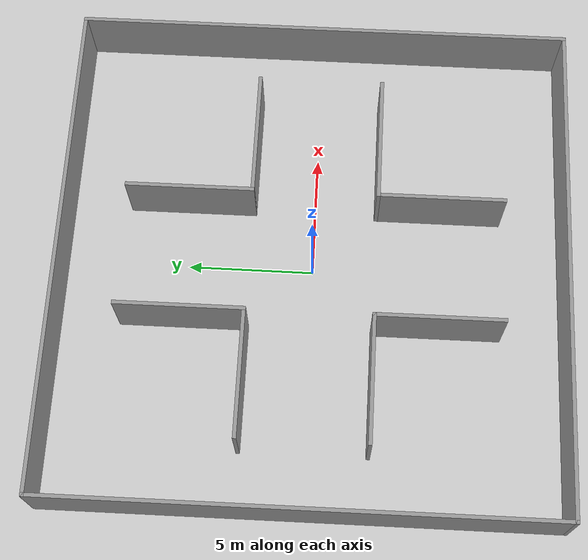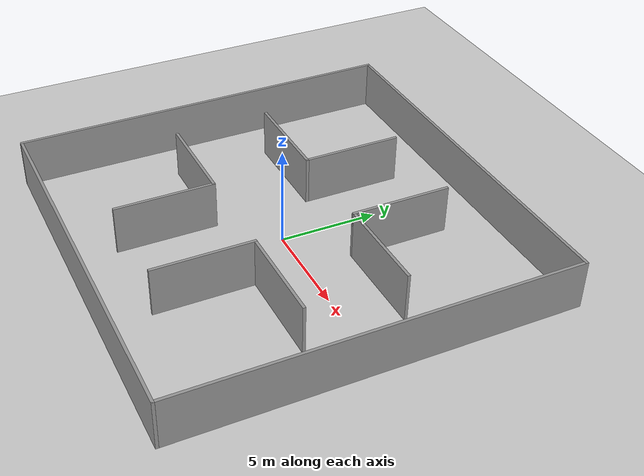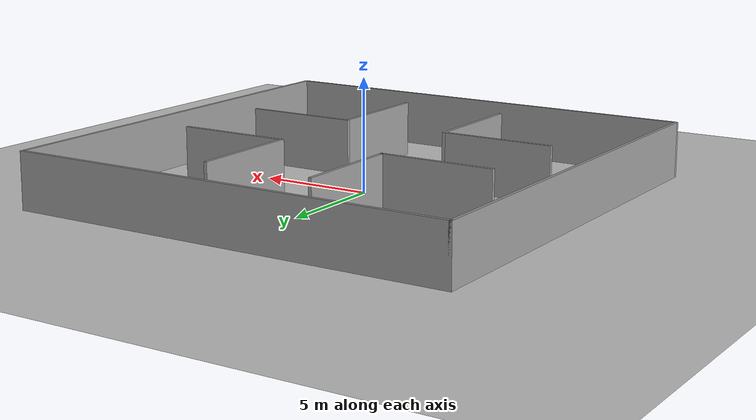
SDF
<?xml version='1.0'?>
<sdf version='1.7'>
  <world name='default'>
    <!-- Plugin -->
    <plugin name="gazebo_ros_state" filename="libgazebo_ros_state.so">
      <ros>
        <namespace>/plug</namespace>
        <argument>model_states:=model_states_plug</argument>
        <argument>link_states:=link_states_plug</argument>
      </ros>
      <update_rate>1.0</update_rate>
    </plugin>

    <!-- Sun -->
    <include>
      <uri>model://sun</uri>
    </include>

    <!-- Ground Plane -->
    <include>
      <uri>model://ground_plane</uri>
    </include>

    <!-- Walls -->
    <model name='cross'>
      <pose>0 0 0 0 0 0</pose>
      <static>true</static>

      <!-- Wall 0 -->
      <link name='Wall_0'>
        <collision name='Wall_0_Collision'>
          <geometry>
            <box>
              <size>20.15 0.15 2.5</size>
            </box>
          </geometry>
          <pose>0 0 1.25 0 0 0</pose>
        </collision>
        <visual name='Wall_0_Visual'>
          <geometry>
            <box>
              <size>20.15 0.15 2.5</size>
            </box>
          </geometry>
          <pose>0 0 1.25 0 0 0</pose>
          <material>
            <script>
              <uri>file://media/materials/scripts/gazebo.material</uri>
              <name>Gazebo/Grey</name>
            </script>
            <ambient>1 1 1 1</ambient>
          </material>
        </visual>
        <pose>0 10 0 0 0 0</pose>
      </link>

      <!-- Wall 1 -->
      <link name='Wall_1'>
        <collision name='Wall_1_Collision'>
          <geometry>
            <box>
              <size>20.15 0.15 2.5</size>
            </box>
          </geometry>
          <pose>0 0 1.25 0 0 0</pose>
        </collision>
        <visual name='Wall_1_Visual'>
          <geometry>
            <box>
              <size>20.15 0.15 2.5</size>
            </box>
          </geometry>
          <pose>0 0 1.25 0 0 0</pose>
          <material>
            <script>
              <uri>file://media/materials/scripts/gazebo.material</uri>
              <name>Gazebo/Grey</name>
            </script>
            <ambient>1 1 1 1</ambient>
          </material>
        </visual>
        <pose>10 0 0 0 0 -1.5708</pose>
      </link>

      <!-- Wall 11 -->
      <link name='Wall_11'>
        <collision name='Wall_11_Collision'>
          <geometry>
            <box>
              <size>5.15 0.15 2.5</size>
            </box>
          </geometry>
          <pose>0 0 1.25 0 0 0</pose>
        </collision>
        <visual name='Wall_11_Visual'>
          <geometry>
            <box>
              <size>5.15 0.15 2.5</size>
            </box>
          </geometry>
          <pose>0 0 1.25 0 0 0</pose>
          <material>
            <script>
              <uri>file://media/materials/scripts/gazebo.material</uri>
              <name>Gazebo/Grey</name>
            </script>
            <ambient>1 1 1 1</ambient>
          </material>
        </visual>
        <pose>-5 -2.5 0 0 0 0</pose>
      </link>

      <!-- Wall 12 -->
      <link name='Wall_12'>
        <collision name='Wall_12_Collision'>
          <geometry>
            <box>
              <size>5.15 0.15 2.5</size>
            </box>
          </geometry>
          <pose>0 0 1.25 0 0 0</pose>
        </collision>
        <visual name='Wall_12_Visual'>
          <geometry>
            <box>
              <size>5.15 0.15 2.5</size>
            </box>
          </geometry>
          <pose>0 0 1.25 0 0 0</pose>
          <material>
            <script>
              <uri>file://media/materials/scripts/gazebo.material</uri>
              <name>Gazebo/Grey</name>
            </script>
            <ambient>1 1 1 1</ambient>
          </material>
        </visual>
        <pose>-2.5 -5 0 0 0 -1.5708</pose>
      </link>

      <!-- Wall 14 -->
      <link name='Wall_14'>
        <collision name='Wall_14_Collision'>
          <geometry>
            <box>
              <size>5.15 0.15 2.5</size>
            </box>
          </geometry>
          <pose>0 0 1.25 0 0 0</pose>
        </collision>
        <visual name='Wall_14_Visual'>
          <geometry>
            <box>
              <size>5.15 0.15 2.5</size>
            </box>
          </geometry>
          <pose>0 0 1.25 0 0 0</pose>
          <material>
            <script>
              <uri>file://media/materials/scripts/gazebo.material</uri>
              <name>Gazebo/Grey</name>
            </script>
            <ambient>1 1 1 1</ambient>
          </material>
        </visual>
        <pose>5 -2.5 0 0 0 3.14159</pose>
      </link>

      <!-- Wall 15 -->
      <link name='Wall_15'>
        <collision name='Wall_15_Collision'>
          <geometry>
            <box>
              <size>5.15 0.15 2.5</size>
            </box>
          </geometry>
          <pose>0 0 1.25 0 0 0</pose>
        </collision>
        <visual name='Wall_15_Visual'>
          <geometry>
            <box>
              <size>5.15 0.15 2.5</size>
            </box>
          </geometry>
          <pose>0 0 1.25 0 0 0</pose>
          <material>
            <script>
              <uri>file://media/materials/scripts/gazebo.material</uri>
              <name>Gazebo/Grey</name>
            </script>
            <ambient>1 1 1 1</ambient>
          </material>
        </visual>
        <pose>2.5 -5 0 0 0 -1.5708</pose>
      </link>

      <!-- Wall 17 -->
      <link name='Wall_17'>
        <collision name='Wall_17_Collision'>
          <geometry>
            <box>
              <size>5.15 0.15 2.5</size>
            </box>
          </geometry>
          <pose>0 0 1.25 0 0 0</pose>
        </collision>
        <visual name='Wall_17_Visual'>
          <geometry>
            <box>
              <size>5.15 0.15 2.5</size>
            </box>
          </geometry>
          <pose>0 0 1.25 0 0 0</pose>
          <material>
            <script>
              <uri>file://media/materials/scripts/gazebo.material</uri>
              <name>Gazebo/Grey</name>
            </script>
            <ambient>1 1 1 1</ambient>
          </material>
        </visual>
        <pose>2.5 5 0 0 0 -1.5708</pose>
      </link>

      <!-- Wall 18 -->
      <link name='Wall_18'>
        <collision name='Wall_18_Collision'>
          <geometry>
            <box>
              <size>5.15 0.15 2.5</size>
            </box>
          </geometry>
          <pose>0 0 1.25 0 0 0</pose>
        </collision>
        <visual name='Wall_18_Visual'>
          <geometry>
            <box>
              <size>5.15 0.15 2.5</size>
            </box>
          </geometry>
          <pose>0 0 1.25 0 0 0</pose>
          <material>
            <script>
              <uri>file://media/materials/scripts/gazebo.material</uri>
              <name>Gazebo/Grey</name>
            </script>
            <ambient>1 1 1 1</ambient>
          </material>
        </visual>
        <pose>5 2.5 0 0 0 0</pose>
      </link>

      <!-- Wall 2 -->
      <link name='Wall_2'>
        <collision name='Wall_2_Collision'>
          <geometry>
            <box>
              <size>20.15 0.15 2.5</size>
            </box>
          </geometry>
          <pose>0 0 1.25 0 0 0</pose>
        </collision>
        <visual name='Wall_2_Visual'>
          <geometry>
            <box>
              <size>20.15 0.15 2.5</size>
            </box>
          </geometry>
          <pose>0 0 1.25 0 0 0</pose>
          <material>
            <script>
              <uri>file://media/materials/scripts/gazebo.material</uri>
              <name>Gazebo/Grey</name>
            </script>
            <ambient>1 1 1 1</ambient>
          </material>
        </visual>
        <pose>0 -10 0 0 0 3.14159</pose>
      </link>

      <!-- Wall 3 -->
      <link name='Wall_3'>
        <collision name='Wall_3_Collision'>
          <geometry>
            <box>
              <size>20.15 0.15 2.5</size>
            </box>
          </geometry>
          <pose>0 0 1.25 0 0 0</pose>
        </collision>
        <visual name='Wall_3_Visual'>
          <geometry>
            <box>
              <size>20.15 0.15 2.5</size>
            </box>
          </geometry>
          <pose>0 0 1.25 0 0 0</pose>
          <material>
            <script>
              <uri>file://media/materials/scripts/gazebo.material</uri>
              <name>Gazebo/Grey</name>
            </script>
            <ambient>1 1 1 1</ambient>
          </material>
        </visual>
        <pose>-10 0 0 0 0 1.5708</pose>
      </link>

      <!-- Wall 5 -->
      <link name='Wall_5'>
        <collision name='Wall_5_Collision'>
          <geometry>
            <box>
              <size>5.15 0.15 2.5</size>
            </box>
          </geometry>
          <pose>0 0 1.25 0 0 0</pose>
        </collision>
        <visual name='Wall_5_Visual'>
          <geometry>
            <box>
              <size>5.15 0.15 2.5</size>
            </box>
          </geometry>
          <pose>0 0 1.25 0 0 0</pose>
          <material>
            <script>
              <uri>file://media/materials/scripts/gazebo.material</uri>
              <name>Gazebo/Grey</name>
            </script>
            <ambient>1 1 1 1</ambient>
          </material>
        </visual>
        <pose>-2.5 5 0 0 0 -1.5708</pose>
      </link>

      <!-- Wall 6 -->
      <link name='Wall_6'>
        <collision name='Wall_6_Collision'>
          <geometry>
            <box>
              <size>5.15 0.15 2.5</size>
            </box>
          </geometry>
          <pose>0 0 1.25 0 0 0</pose>
        </collision>
        <visual name='Wall_6_Visual'>
          <geometry>
            <box>
              <size>5.15 0.15 2.5</size>
            </box>
          </geometry>
          <pose>0 0 1.25 0 0 0</pose>
          <material>
            <script>
              <uri>file://media/materials/scripts/gazebo.material</uri>
              <name>Gazebo/Grey</name>
            </script>
            <ambient>1 1 1 1</ambient>
          </material>
        </visual>
        <pose>-5 2.5 0 0 0 3.14159</pose>
      </link>
    </model>
    <gui>
      <camera name='user_camera'>
          <pose>0 0 40 3.14159 1.5708 0</pose>
        <view_controller>orbit</view_controller>
      </camera>
    </gui>
  </world>
</sdf>
